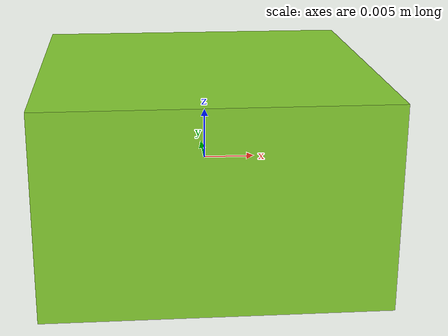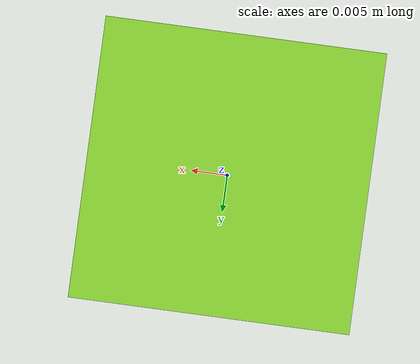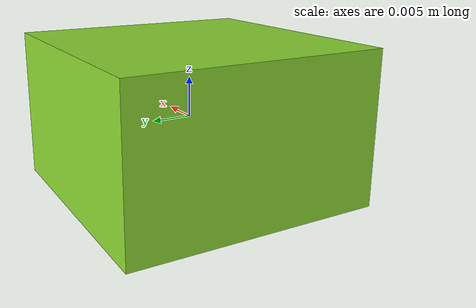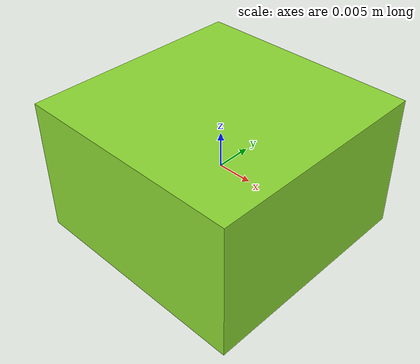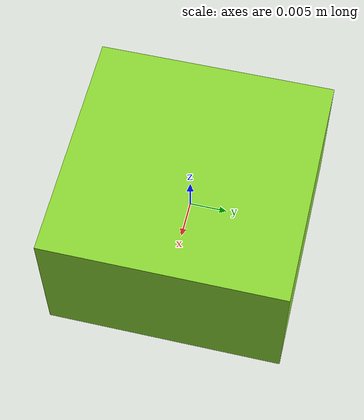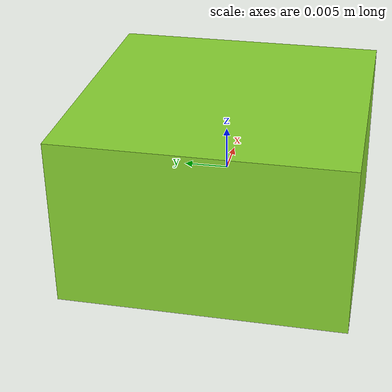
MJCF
<mujoco model="duplo_brick">
  <compiler angle="radian"/>
  <worldbody>
    <body name="brick">
      <freejoint name="free"/>
      <geom name="geom" type="box" size="0.0159 0.0159 0.0096" density="600"
            rgba="0.55 0.85 0.20 1"/>
    </body>
  </worldbody>
</mujoco>
